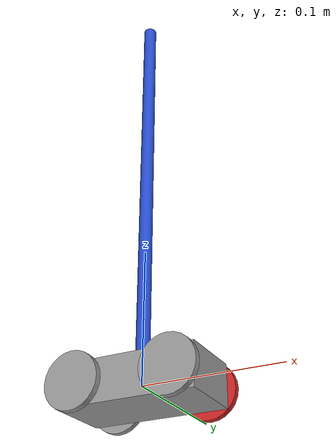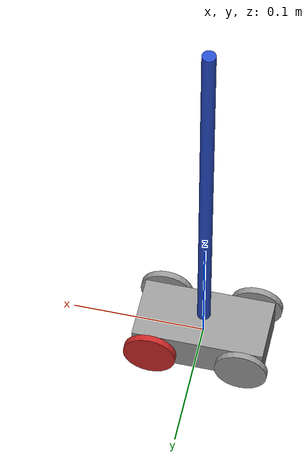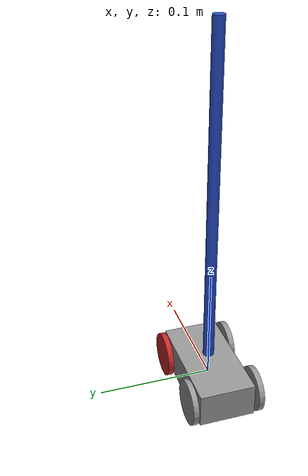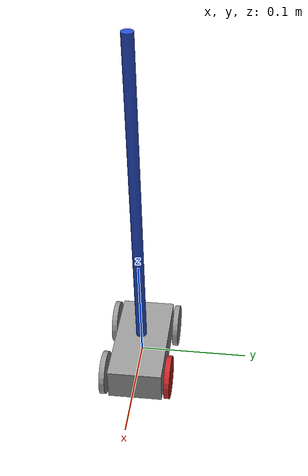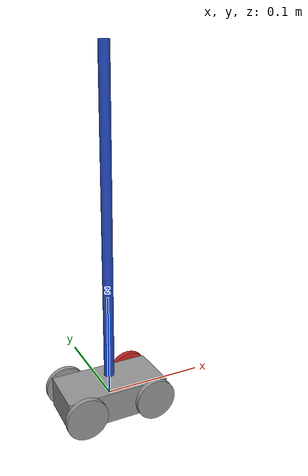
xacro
<?xml version="1.0"?>
<robot name="inverted_pendulum_w_wheels" xmlns:xacro="http://ros.org/wiki/xacro">

<xacro:property name="M_PI" value="3.14159265" />

<xacro:property name="pendulum_length" value="0.3" />

<xacro:macro name="vehicle_wheel" params="link_name">
  <link name="${link_name}">
    <inertial>
      <mass value="0.1" />
      <inertia ixx="0.001" ixy="0.0" ixz="0.0"
        iyy="0.001" iyz="0.0"
        izz="0.001" />
    </inertial>

    <visual>
      <geometry>
        <cylinder radius="0.02" length="0.005" />
      </geometry>
    </visual>

    <collision>
      <geometry>
        <cylinder radius="0.02" length="0.005" />
      </geometry>
    </collision>
  </link>
</xacro:macro>

<link name="vehicle_body">
  <inertial>
    <mass value="1.0" />
    <inertia ixx="0.01" ixy="0.0" ixz="0.0"
      iyy="0.01" iyz="0.0"
      izz="0.01" />
  </inertial>

  <visual>
    <geometry>
      <box size="0.1 0.05 0.03"/>
    </geometry>
  </visual>

  <collision>
    <geometry>
      <box size="0.1 0.05 0.03"/>
    </geometry>
  </collision>
</link>

<gazebo reference="vehicle_body">
  <material>Gazebo/Grey</material>
</gazebo>

<!-- four wheel links -->
<xacro:vehicle_wheel link_name="left_front_wheel" />
<gazebo reference="left_front_wheel">
  <!-- mark left front wheel as red for orientation -->
  <material>Gazebo/Red</material>
  <mu1>100</mu1>
  <mu2>50</mu2>
</gazebo>

<xacro:vehicle_wheel link_name="left_rear_wheel" />
<gazebo reference="left_rear_wheel">
  <material>Gazebo/Grey</material>
  <mu1>100</mu1>
  <mu2>50</mu2>
</gazebo>

<xacro:vehicle_wheel link_name="right_front_wheel" />
<gazebo reference="right_front_wheel">
  <material>Gazebo/Grey</material>
  <mu1>100</mu1>
  <mu2>50</mu2>
</gazebo>

<xacro:vehicle_wheel link_name="right_rear_wheel" />
<gazebo reference="right_rear_wheel">
  <material>Gazebo/Grey</material>
  <mu1>100</mu1>
  <mu2>50</mu2>
</gazebo>

<!-- four wheel joints -->
<joint name="left_front_joint" type="continuous">
  <parent link="vehicle_body" />
  <child link="left_front_wheel" />
  <origin rpy="${M_PI/2} 0 0" xyz="0.035 0.03 0"/>
  <axis xyz="0 0 1" />
</joint>

<joint name="left_rear_joint" type="continuous">
  <parent link="vehicle_body" />
  <child link="left_rear_wheel" />
  <origin rpy="${M_PI/2} 0 0" xyz="-0.035 0.03 0"/>
  <axis xyz="0 0 1" />
</joint>

<joint name="right_front_joint" type="continuous">
  <parent link="vehicle_body" />
  <child link="right_front_wheel" />
  <origin rpy="${M_PI/2} 0 0" xyz="0.035 -0.03 0"/>
  <axis xyz="0 0 1" />
</joint>

<joint name="right_rear_joint" type="continuous">
  <parent link="vehicle_body" />
  <child link="right_rear_wheel" />
  <origin rpy="${M_PI/2} 0 0" xyz="-0.035 -0.03 0"/>
  <axis xyz="0 0 1" />
</joint>

<!-- the inverted pendulum link -->
<link name="pendulum">
  <inertial>
    <mass value="0.1" />
    <origin xyz="0 0 ${pendulum_length/2}" />
    <inertia ixx="0.005" ixy="0.0" ixz="0.0"
      iyy="0.005" iyz="0.0"
      izz="0.001" />
  </inertial>

  <visual>
    <origin xyz="0 0 ${pendulum_length/2}" />
    <geometry>
      <cylinder radius="0.005" length="${pendulum_length}" />
    </geometry>
  </visual>

  <collision>
    <origin xyz="0 0 ${pendulum_length/2}" />
    <geometry>
      <cylinder radius="0.005" length="${pendulum_length}" />
    </geometry>
  </collision>
</link>

<gazebo reference="pendulum">
  <material>Gazebo/Blue</material>
  <!-- why selfCollide is not working with gazebo -->
  <!-- previous I was trying to use this tag to limit rotation angle by adding two limit blocks, not working -->
</gazebo>

<!-- the inverted pendulum joint -->
<joint name="pendulum_joint" type="revolute">
  <parent link="vehicle_body" />
  <child link="pendulum" />
  <origin xyz="0 0 0.02"/>
  <axis xyz="0 1 0" />
  <limit lower="-${M_PI/2}" upper="${M_PI/2}" effort="10" velocity="10" />
  <!-- set limit for pendulum to not cross vehicle body -->
</joint>

</robot>
